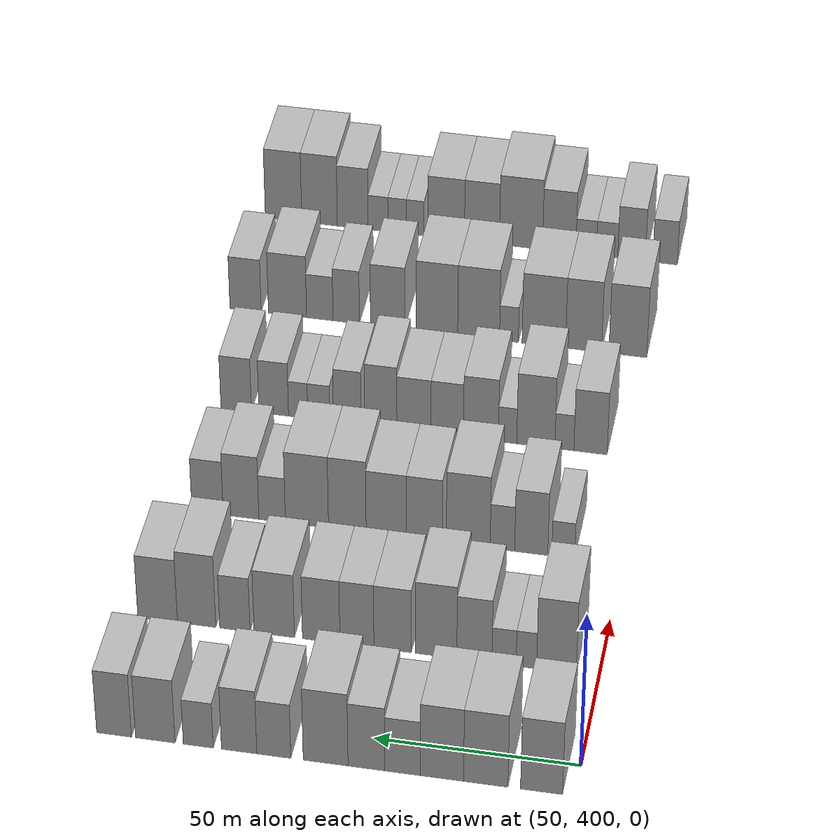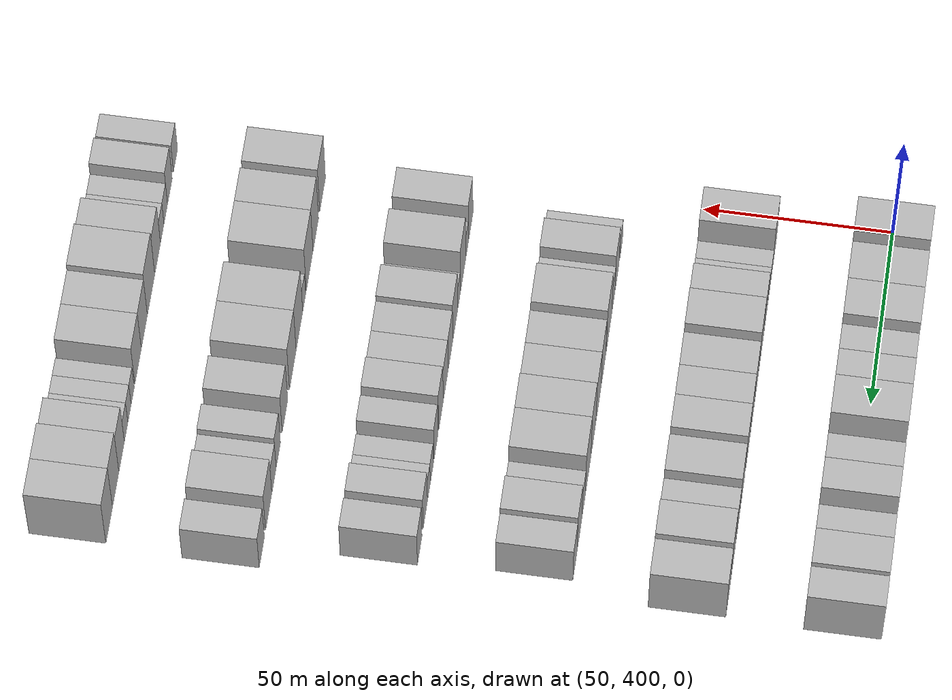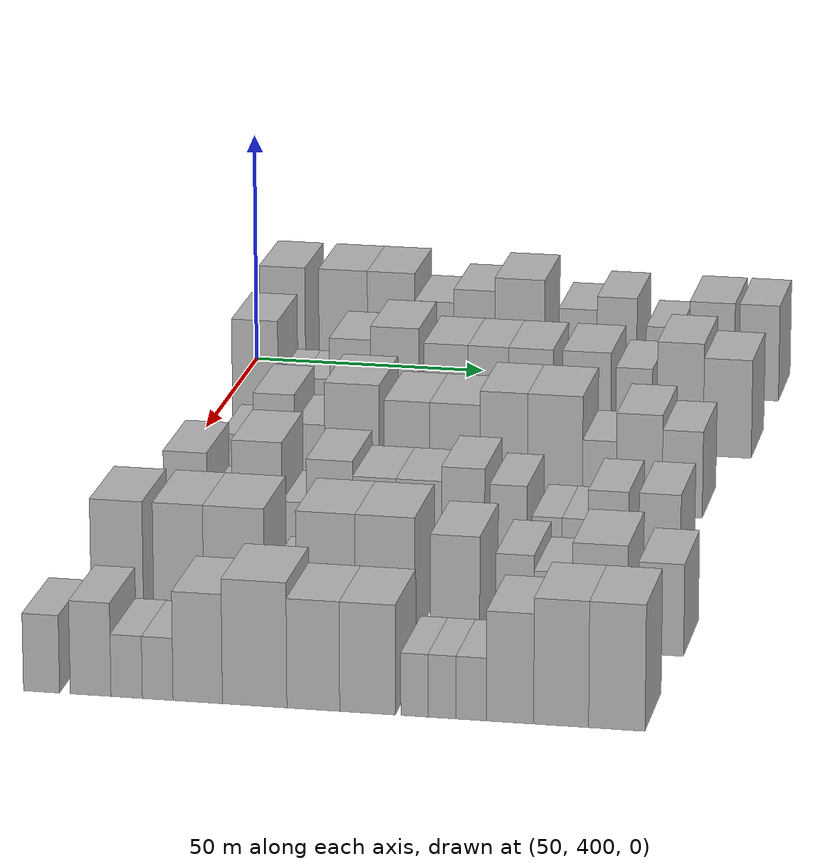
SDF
<sdf version="1.6">
 <world name="default">
  <model name="building_118">
   <static>1</static>
   <pose>50.0000 407.8402 0 0.000000 0.000000 0.000000</pose>
   <link name="link">
    <pose>0 0 12.00 0 0 0</pose>
    <collision name="collision"><geometry><box><size>20.0000 10.0114 24.0000</size></box></geometry></collision>
    <visual name="visual">
     <cast_shadows>0</cast_shadows>
     <geometry><box><size>20.0000 10.0114 24.0000</size></box></geometry>
     <material>
      <script>
       <uri>model://HANNAS_wall/materials/scripts</uri>
       <uri>model://HANNAS_wall/materials/textures</uri>
       <name>vrc/HANNAS_wall</name>
      </script>
     </material>
    </visual>
   </link>
  </model>
  <model name="building_119">
   <static>1</static>
   <pose>50.0000 421.1524 0 0.000000 0.000000 0.000000</pose>
   <link name="link">
    <pose>0 0 12.00 0 0 0</pose>
    <collision name="collision"><geometry><box><size>20.0000 10.6130 24.0000</size></box></geometry></collision>
    <visual name="visual">
     <cast_shadows>0</cast_shadows>
     <geometry><box><size>20.0000 10.6130 24.0000</size></box></geometry>
     <material>
      <script>
       <uri>model://HANNAS_wall/materials/scripts</uri>
       <uri>model://HANNAS_wall/materials/textures</uri>
       <name>vrc/HANNAS_wall</name>
      </script>
     </material>
    </visual>
   </link>
  </model>
  <model name="building_120">
   <static>1</static>
   <pose>50.0000 431.6428 0 0.000000 0.000000 0.000000</pose>
   <link name="link">
    <pose>0 0 12.00 0 0 0</pose>
    <collision name="collision"><geometry><box><size>20.0000 10.3678 24.0000</size></box></geometry></collision>
    <visual name="visual">
     <cast_shadows>0</cast_shadows>
     <geometry><box><size>20.0000 10.3678 24.0000</size></box></geometry>
     <material>
      <script>
       <uri>model://HANNAS_wall/materials/scripts</uri>
       <uri>model://HANNAS_wall/materials/textures</uri>
       <name>vrc/HANNAS_wall</name>
      </script>
     </material>
    </visual>
   </link>
  </model>
  <model name="building_121">
   <static>1</static>
   <pose>50.0000 441.0863 0 0.000000 0.000000 0.000000</pose>
   <link name="link">
    <pose>0 0 9.00 0 0 0</pose>
    <collision name="collision"><geometry><box><size>20.0000 8.5191 18.0000</size></box></geometry></collision>
    <visual name="visual">
     <cast_shadows>0</cast_shadows>
     <geometry><box><size>20.0000 8.5191 18.0000</size></box></geometry>
     <material>
      <script>
       <uri>model://HANNAS_wall/materials/scripts</uri>
       <uri>model://HANNAS_wall/materials/textures</uri>
       <name>vrc/HANNAS_wall</name>
      </script>
     </material>
    </visual>
   </link>
  </model>
  <model name="building_122">
   <static>1</static>
   <pose>50.0000 449.7845 0 0.000000 0.000000 0.000000</pose>
   <link name="link">
    <pose>0 0 10.50 0 0 0</pose>
    <collision name="collision"><geometry><box><size>20.0000 8.8772 21.0000</size></box></geometry></collision>
    <visual name="visual">
     <cast_shadows>0</cast_shadows>
     <geometry><box><size>20.0000 8.8772 21.0000</size></box></geometry>
     <material>
      <script>
       <uri>model://HANNAS_wall/materials/scripts</uri>
       <uri>model://HANNAS_wall/materials/textures</uri>
       <name>vrc/HANNAS_wall</name>
      </script>
     </material>
    </visual>
   </link>
  </model>
  <model name="building_123">
   <static>1</static>
   <pose>50.0000 459.6331 0 0.000000 0.000000 0.000000</pose>
   <link name="link">
    <pose>0 0 12.00 0 0 0</pose>
    <collision name="collision"><geometry><box><size>20.0000 10.8201 24.0000</size></box></geometry></collision>
    <visual name="visual">
     <cast_shadows>0</cast_shadows>
     <geometry><box><size>20.0000 10.8201 24.0000</size></box></geometry>
     <material>
      <script>
       <uri>model://HANNAS_wall/materials/scripts</uri>
       <uri>model://HANNAS_wall/materials/textures</uri>
       <name>vrc/HANNAS_wall</name>
      </script>
     </material>
    </visual>
   </link>
  </model>
  <model name="building_124">
   <static>1</static>
   <pose>50.0000 472.1668 0 0.000000 0.000000 0.000000</pose>
   <link name="link">
    <pose>0 0 9.00 0 0 0</pose>
    <collision name="collision"><geometry><box><size>20.0000 8.2473 18.0000</size></box></geometry></collision>
    <visual name="visual">
     <cast_shadows>0</cast_shadows>
     <geometry><box><size>20.0000 8.2473 18.0000</size></box></geometry>
     <material>
      <script>
       <uri>model://HANNAS_wall/materials/scripts</uri>
       <uri>model://HANNAS_wall/materials/textures</uri>
       <name>vrc/HANNAS_wall</name>
      </script>
     </material>
    </visual>
   </link>
  </model>
  <model name="building_125">
   <static>1</static>
   <pose>50.0000 480.5888 0 0.000000 0.000000 0.000000</pose>
   <link name="link">
    <pose>0 0 10.50 0 0 0</pose>
    <collision name="collision"><geometry><box><size>20.0000 8.5966 21.0000</size></box></geometry></collision>
    <visual name="visual">
     <cast_shadows>0</cast_shadows>
     <geometry><box><size>20.0000 8.5966 21.0000</size></box></geometry>
     <material>
      <script>
       <uri>model://HANNAS_wall/materials/scripts</uri>
       <uri>model://HANNAS_wall/materials/textures</uri>
       <name>vrc/HANNAS_wall</name>
      </script>
     </material>
    </visual>
   </link>
  </model>
  <model name="building_126">
   <static>1</static>
   <pose>50.0000 490.5388 0 0.000000 0.000000 0.000000</pose>
   <link name="link">
    <pose>0 0 7.50 0 0 0</pose>
    <collision name="collision"><geometry><box><size>20.0000 7.3034 15.0000</size></box></geometry></collision>
    <visual name="visual">
     <cast_shadows>0</cast_shadows>
     <geometry><box><size>20.0000 7.3034 15.0000</size></box></geometry>
     <material>
      <script>
       <uri>model://HANNAS_wall/materials/scripts</uri>
       <uri>model://HANNAS_wall/materials/textures</uri>
       <name>vrc/HANNAS_wall</name>
      </script>
     </material>
    </visual>
   </link>
  </model>
  <model name="building_127">
   <static>1</static>
   <pose>50.0000 501.0231 0 0.000000 0.000000 0.000000</pose>
   <link name="link">
    <pose>0 0 10.50 0 0 0</pose>
    <collision name="collision"><geometry><box><size>20.0000 9.6653 21.0000</size></box></geometry></collision>
    <visual name="visual">
     <cast_shadows>0</cast_shadows>
     <geometry><box><size>20.0000 9.6653 21.0000</size></box></geometry>
     <material>
      <script>
       <uri>model://HANNAS_wall/materials/scripts</uri>
       <uri>model://HANNAS_wall/materials/textures</uri>
       <name>vrc/HANNAS_wall</name>
      </script>
     </material>
    </visual>
   </link>
  </model>
  <model name="building_128">
   <static>1</static>
   <pose>50.0000 511.1208 0 0.000000 0.000000 0.000000</pose>
   <link name="link">
    <pose>0 0 10.50 0 0 0</pose>
    <collision name="collision"><geometry><box><size>20.0000 8.5302 21.0000</size></box></geometry></collision>
    <visual name="visual">
     <cast_shadows>0</cast_shadows>
     <geometry><box><size>20.0000 8.5302 21.0000</size></box></geometry>
     <material>
      <script>
       <uri>model://HANNAS_wall/materials/scripts</uri>
       <uri>model://HANNAS_wall/materials/textures</uri>
       <name>vrc/HANNAS_wall</name>
      </script>
     </material>
    </visual>
   </link>
  </model>
  <model name="building_254">
   <static>1</static>
   <pose>90.0000 410.4669 0 0.000000 0.000000 0.000000</pose>
   <link name="link">
    <pose>0 0 12.00 0 0 0</pose>
    <collision name="collision"><geometry><box><size>20.0000 9.7585 24.0000</size></box></geometry></collision>
    <visual name="visual">
     <cast_shadows>0</cast_shadows>
     <geometry><box><size>20.0000 9.7585 24.0000</size></box></geometry>
     <material>
      <script>
       <uri>model://HANNAS_wall/materials/scripts</uri>
       <uri>model://HANNAS_wall/materials/textures</uri>
       <name>vrc/HANNAS_wall</name>
      </script>
     </material>
    </visual>
   </link>
  </model>
  <model name="building_255">
   <static>1</static>
   <pose>90.0000 417.8589 0 0.000000 0.000000 0.000000</pose>
   <link name="link">
    <pose>0 0 6.00 0 0 0</pose>
    <collision name="collision"><geometry><box><size>20.0000 5.0255 12.0000</size></box></geometry></collision>
    <visual name="visual">
     <cast_shadows>0</cast_shadows>
     <geometry><box><size>20.0000 5.0255 12.0000</size></box></geometry>
     <material>
      <script>
       <uri>model://HANNAS_wall/materials/scripts</uri>
       <uri>model://HANNAS_wall/materials/textures</uri>
       <name>vrc/HANNAS_wall</name>
      </script>
     </material>
    </visual>
   </link>
  </model>
  <model name="building_256">
   <static>1</static>
   <pose>90.0000 423.3537 0 0.000000 0.000000 0.000000</pose>
   <link name="link">
    <pose>0 0 6.00 0 0 0</pose>
    <collision name="collision"><geometry><box><size>20.0000 5.9640 12.0000</size></box></geometry></collision>
    <visual name="visual">
     <cast_shadows>0</cast_shadows>
     <geometry><box><size>20.0000 5.9640 12.0000</size></box></geometry>
     <material>
      <script>
       <uri>model://HANNAS_wall/materials/scripts</uri>
       <uri>model://HANNAS_wall/materials/textures</uri>
       <name>vrc/HANNAS_wall</name>
      </script>
     </material>
    </visual>
   </link>
  </model>
  <model name="building_257">
   <static>1</static>
   <pose>90.0000 430.6773 0 0.000000 0.000000 0.000000</pose>
   <link name="link">
    <pose>0 0 10.50 0 0 0</pose>
    <collision name="collision"><geometry><box><size>20.0000 8.6832 21.0000</size></box></geometry></collision>
    <visual name="visual">
     <cast_shadows>0</cast_shadows>
     <geometry><box><size>20.0000 8.6832 21.0000</size></box></geometry>
     <material>
      <script>
       <uri>model://HANNAS_wall/materials/scripts</uri>
       <uri>model://HANNAS_wall/materials/textures</uri>
       <name>vrc/HANNAS_wall</name>
      </script>
     </material>
    </visual>
   </link>
  </model>
  <model name="building_258">
   <static>1</static>
   <pose>90.0000 440.1343 0 0.000000 0.000000 0.000000</pose>
   <link name="link">
    <pose>0 0 12.00 0 0 0</pose>
    <collision name="collision"><geometry><box><size>20.0000 10.2310 24.0000</size></box></geometry></collision>
    <visual name="visual">
     <cast_shadows>0</cast_shadows>
     <geometry><box><size>20.0000 10.2310 24.0000</size></box></geometry>
     <material>
      <script>
       <uri>model://HANNAS_wall/materials/scripts</uri>
       <uri>model://HANNAS_wall/materials/textures</uri>
       <name>vrc/HANNAS_wall</name>
      </script>
     </material>
    </visual>
   </link>
  </model>
  <model name="building_259">
   <static>1</static>
   <pose>90.0000 450.9109 0 0.000000 0.000000 0.000000</pose>
   <link name="link">
    <pose>0 0 10.50 0 0 0</pose>
    <collision name="collision"><geometry><box><size>20.0000 9.3222 21.0000</size></box></geometry></collision>
    <visual name="visual">
     <cast_shadows>0</cast_shadows>
     <geometry><box><size>20.0000 9.3222 21.0000</size></box></geometry>
     <material>
      <script>
       <uri>model://HANNAS_wall/materials/scripts</uri>
       <uri>model://HANNAS_wall/materials/textures</uri>
       <name>vrc/HANNAS_wall</name>
      </script>
     </material>
    </visual>
   </link>
  </model>
  <model name="building_260">
   <static>1</static>
   <pose>90.0000 459.8056 0 0.000000 0.000000 0.000000</pose>
   <link name="link">
    <pose>0 0 10.50 0 0 0</pose>
    <collision name="collision"><geometry><box><size>20.0000 8.4673 21.0000</size></box></geometry></collision>
    <visual name="visual">
     <cast_shadows>0</cast_shadows>
     <geometry><box><size>20.0000 8.4673 21.0000</size></box></geometry>
     <material>
      <script>
       <uri>model://HANNAS_wall/materials/scripts</uri>
       <uri>model://HANNAS_wall/materials/textures</uri>
       <name>vrc/HANNAS_wall</name>
      </script>
     </material>
    </visual>
   </link>
  </model>
  <model name="building_261">
   <static>1</static>
   <pose>90.0000 468.7089 0 0.000000 0.000000 0.000000</pose>
   <link name="link">
    <pose>0 0 10.50 0 0 0</pose>
    <collision name="collision"><geometry><box><size>20.0000 9.3393 21.0000</size></box></geometry></collision>
    <visual name="visual">
     <cast_shadows>0</cast_shadows>
     <geometry><box><size>20.0000 9.3393 21.0000</size></box></geometry>
     <material>
      <script>
       <uri>model://HANNAS_wall/materials/scripts</uri>
       <uri>model://HANNAS_wall/materials/textures</uri>
       <name>vrc/HANNAS_wall</name>
      </script>
     </material>
    </visual>
   </link>
  </model>
  <model name="building_262">
   <static>1</static>
   <pose>90.0000 480.4415 0 0.000000 0.000000 0.000000</pose>
   <link name="link">
    <pose>0 0 10.50 0 0 0</pose>
    <collision name="collision"><geometry><box><size>20.0000 10.1257 21.0000</size></box></geometry></collision>
    <visual name="visual">
     <cast_shadows>0</cast_shadows>
     <geometry><box><size>20.0000 10.1257 21.0000</size></box></geometry>
     <material>
      <script>
       <uri>model://HANNAS_wall/materials/scripts</uri>
       <uri>model://HANNAS_wall/materials/textures</uri>
       <name>vrc/HANNAS_wall</name>
      </script>
     </material>
    </visual>
   </link>
  </model>
  <model name="building_263">
   <static>1</static>
   <pose>90.0000 490.3108 0 0.000000 0.000000 0.000000</pose>
   <link name="link">
    <pose>0 0 9.00 0 0 0</pose>
    <collision name="collision"><geometry><box><size>20.0000 7.6128 18.0000</size></box></geometry></collision>
    <visual name="visual">
     <cast_shadows>0</cast_shadows>
     <geometry><box><size>20.0000 7.6128 18.0000</size></box></geometry>
     <material>
      <script>
       <uri>model://HANNAS_wall/materials/scripts</uri>
       <uri>model://HANNAS_wall/materials/textures</uri>
       <name>vrc/HANNAS_wall</name>
      </script>
     </material>
    </visual>
   </link>
  </model>
  <model name="building_264">
   <static>1</static>
   <pose>90.0000 499.9467 0 0.000000 0.000000 0.000000</pose>
   <link name="link">
    <pose>0 0 12.00 0 0 0</pose>
    <collision name="collision"><geometry><box><size>20.0000 9.6590 24.0000</size></box></geometry></collision>
    <visual name="visual">
     <cast_shadows>0</cast_shadows>
     <geometry><box><size>20.0000 9.6590 24.0000</size></box></geometry>
     <material>
      <script>
       <uri>model://HANNAS_wall/materials/scripts</uri>
       <uri>model://HANNAS_wall/materials/textures</uri>
       <name>vrc/HANNAS_wall</name>
      </script>
     </material>
    </visual>
   </link>
  </model>
  <model name="building_265">
   <static>1</static>
   <pose>90.0000 509.7787 0 0.000000 0.000000 0.000000</pose>
   <link name="link">
    <pose>0 0 10.50 0 0 0</pose>
    <collision name="collision"><geometry><box><size>20.0000 10.0051 21.0000</size></box></geometry></collision>
    <visual name="visual">
     <cast_shadows>0</cast_shadows>
     <geometry><box><size>20.0000 10.0051 21.0000</size></box></geometry>
     <material>
      <script>
       <uri>model://HANNAS_wall/materials/scripts</uri>
       <uri>model://HANNAS_wall/materials/textures</uri>
       <name>vrc/HANNAS_wall</name>
      </script>
     </material>
    </visual>
   </link>
  </model>
  <model name="building_383">
   <static>1</static>
   <pose>130.0000 414.8869 0 0.000000 0.000000 0.000000</pose>
   <link name="link">
    <pose>0 0 6.00 0 0 0</pose>
    <collision name="collision"><geometry><box><size>20.0000 5.8373 12.0000</size></box></geometry></collision>
    <visual name="visual">
     <cast_shadows>0</cast_shadows>
     <geometry><box><size>20.0000 5.8373 12.0000</size></box></geometry>
     <material>
      <script>
       <uri>model://HANNAS_wall/materials/scripts</uri>
       <uri>model://HANNAS_wall/materials/textures</uri>
       <name>vrc/HANNAS_wall</name>
      </script>
     </material>
    </visual>
   </link>
  </model>
  <model name="building_384">
   <static>1</static>
   <pose>130.0000 423.0171 0 0.000000 0.000000 0.000000</pose>
   <link name="link">
    <pose>0 0 10.50 0 0 0</pose>
    <collision name="collision"><geometry><box><size>20.0000 8.4231 21.0000</size></box></geometry></collision>
    <visual name="visual">
     <cast_shadows>0</cast_shadows>
     <geometry><box><size>20.0000 8.4231 21.0000</size></box></geometry>
     <material>
      <script>
       <uri>model://HANNAS_wall/materials/scripts</uri>
       <uri>model://HANNAS_wall/materials/textures</uri>
       <name>vrc/HANNAS_wall</name>
      </script>
     </material>
    </visual>
   </link>
  </model>
  <model name="building_385">
   <static>1</static>
   <pose>130.0000 430.3355 0 0.000000 0.000000 0.000000</pose>
   <link name="link">
    <pose>0 0 7.50 0 0 0</pose>
    <collision name="collision"><geometry><box><size>20.0000 6.2138 15.0000</size></box></geometry></collision>
    <visual name="visual">
     <cast_shadows>0</cast_shadows>
     <geometry><box><size>20.0000 6.2138 15.0000</size></box></geometry>
     <material>
      <script>
       <uri>model://HANNAS_wall/materials/scripts</uri>
       <uri>model://HANNAS_wall/materials/textures</uri>
       <name>vrc/HANNAS_wall</name>
      </script>
     </material>
    </visual>
   </link>
  </model>
  <model name="building_386">
   <static>1</static>
   <pose>130.0000 439.0436 0 0.000000 0.000000 0.000000</pose>
   <link name="link">
    <pose>0 0 12.00 0 0 0</pose>
    <collision name="collision"><geometry><box><size>20.0000 11.2025 24.0000</size></box></geometry></collision>
    <visual name="visual">
     <cast_shadows>0</cast_shadows>
     <geometry><box><size>20.0000 11.2025 24.0000</size></box></geometry>
     <material>
      <script>
       <uri>model://HANNAS_wall/materials/scripts</uri>
       <uri>model://HANNAS_wall/materials/textures</uri>
       <name>vrc/HANNAS_wall</name>
      </script>
     </material>
    </visual>
   </link>
  </model>
  <model name="building_387">
   <static>1</static>
   <pose>130.0000 450.2830 0 0.000000 0.000000 0.000000</pose>
   <link name="link">
    <pose>0 0 10.50 0 0 0</pose>
    <collision name="collision"><geometry><box><size>20.0000 9.2763 21.0000</size></box></geometry></collision>
    <visual name="visual">
     <cast_shadows>0</cast_shadows>
     <geometry><box><size>20.0000 9.2763 21.0000</size></box></geometry>
     <material>
      <script>
       <uri>model://HANNAS_wall/materials/scripts</uri>
       <uri>model://HANNAS_wall/materials/textures</uri>
       <name>vrc/HANNAS_wall</name>
      </script>
     </material>
    </visual>
   </link>
  </model>
  <model name="building_388">
   <static>1</static>
   <pose>130.0000 460.0347 0 0.000000 0.000000 0.000000</pose>
   <link name="link">
    <pose>0 0 10.50 0 0 0</pose>
    <collision name="collision"><geometry><box><size>20.0000 10.2270 21.0000</size></box></geometry></collision>
    <visual name="visual">
     <cast_shadows>0</cast_shadows>
     <geometry><box><size>20.0000 10.2270 21.0000</size></box></geometry>
     <material>
      <script>
       <uri>model://HANNAS_wall/materials/scripts</uri>
       <uri>model://HANNAS_wall/materials/textures</uri>
       <name>vrc/HANNAS_wall</name>
      </script>
     </material>
    </visual>
   </link>
  </model>
  <model name="building_389">
   <static>1</static>
   <pose>130.0000 469.9922 0 0.000000 0.000000 0.000000</pose>
   <link name="link">
    <pose>0 0 12.00 0 0 0</pose>
    <collision name="collision"><geometry><box><size>20.0000 9.6880 24.0000</size></box></geometry></collision>
    <visual name="visual">
     <cast_shadows>0</cast_shadows>
     <geometry><box><size>20.0000 9.6880 24.0000</size></box></geometry>
     <material>
      <script>
       <uri>model://HANNAS_wall/materials/scripts</uri>
       <uri>model://HANNAS_wall/materials/textures</uri>
       <name>vrc/HANNAS_wall</name>
      </script>
     </material>
    </visual>
   </link>
  </model>
  <model name="building_390">
   <static>1</static>
   <pose>130.0000 480.3987 0 0.000000 0.000000 0.000000</pose>
   <link name="link">
    <pose>0 0 12.00 0 0 0</pose>
    <collision name="collision"><geometry><box><size>20.0000 11.1250 24.0000</size></box></geometry></collision>
    <visual name="visual">
     <cast_shadows>0</cast_shadows>
     <geometry><box><size>20.0000 11.1250 24.0000</size></box></geometry>
     <material>
      <script>
       <uri>model://HANNAS_wall/materials/scripts</uri>
       <uri>model://HANNAS_wall/materials/textures</uri>
       <name>vrc/HANNAS_wall</name>
      </script>
     </material>
    </visual>
   </link>
  </model>
  <model name="building_391">
   <static>1</static>
   <pose>130.0000 489.3810 0 0.000000 0.000000 0.000000</pose>
   <link name="link">
    <pose>0 0 7.50 0 0 0</pose>
    <collision name="collision"><geometry><box><size>20.0000 6.8396 15.0000</size></box></geometry></collision>
    <visual name="visual">
     <cast_shadows>0</cast_shadows>
     <geometry><box><size>20.0000 6.8396 15.0000</size></box></geometry>
     <material>
      <script>
       <uri>model://HANNAS_wall/materials/scripts</uri>
       <uri>model://HANNAS_wall/materials/textures</uri>
       <name>vrc/HANNAS_wall</name>
      </script>
     </material>
    </visual>
   </link>
  </model>
  <model name="building_392">
   <static>1</static>
   <pose>130.0000 497.4226 0 0.000000 0.000000 0.000000</pose>
   <link name="link">
    <pose>0 0 10.50 0 0 0</pose>
    <collision name="collision"><geometry><box><size>20.0000 9.2436 21.0000</size></box></geometry></collision>
    <visual name="visual">
     <cast_shadows>0</cast_shadows>
     <geometry><box><size>20.0000 9.2436 21.0000</size></box></geometry>
     <material>
      <script>
       <uri>model://HANNAS_wall/materials/scripts</uri>
       <uri>model://HANNAS_wall/materials/textures</uri>
       <name>vrc/HANNAS_wall</name>
      </script>
     </material>
    </visual>
   </link>
  </model>
  <model name="building_393">
   <static>1</static>
   <pose>130.0000 506.1037 0 0.000000 0.000000 0.000000</pose>
   <link name="link">
    <pose>0 0 9.00 0 0 0</pose>
    <collision name="collision"><geometry><box><size>20.0000 8.1184 18.0000</size></box></geometry></collision>
    <visual name="visual">
     <cast_shadows>0</cast_shadows>
     <geometry><box><size>20.0000 8.1184 18.0000</size></box></geometry>
     <material>
      <script>
       <uri>model://HANNAS_wall/materials/scripts</uri>
       <uri>model://HANNAS_wall/materials/textures</uri>
       <name>vrc/HANNAS_wall</name>
      </script>
     </material>
    </visual>
   </link>
  </model>
  <model name="building_506">
   <static>1</static>
   <pose>170.0000 413.8685 0 0.000000 0.000000 0.000000</pose>
   <link name="link">
    <pose>0 0 10.50 0 0 0</pose>
    <collision name="collision"><geometry><box><size>20.0000 8.6747 21.0000</size></box></geometry></collision>
    <visual name="visual">
     <cast_shadows>0</cast_shadows>
     <geometry><box><size>20.0000 8.6747 21.0000</size></box></geometry>
     <material>
      <script>
       <uri>model://HANNAS_wall/materials/scripts</uri>
       <uri>model://HANNAS_wall/materials/textures</uri>
       <name>vrc/HANNAS_wall</name>
      </script>
     </material>
    </visual>
   </link>
  </model>
  <model name="building_507">
   <static>1</static>
   <pose>170.0000 420.6895 0 0.000000 0.000000 0.000000</pose>
   <link name="link">
    <pose>0 0 6.00 0 0 0</pose>
    <collision name="collision"><geometry><box><size>20.0000 4.9673 12.0000</size></box></geometry></collision>
    <visual name="visual">
     <cast_shadows>0</cast_shadows>
     <geometry><box><size>20.0000 4.9673 12.0000</size></box></geometry>
     <material>
      <script>
       <uri>model://HANNAS_wall/materials/scripts</uri>
       <uri>model://HANNAS_wall/materials/textures</uri>
       <name>vrc/HANNAS_wall</name>
      </script>
     </material>
    </visual>
   </link>
  </model>
  <model name="building_508">
   <static>1</static>
   <pose>170.0000 428.1649 0 0.000000 0.000000 0.000000</pose>
   <link name="link">
    <pose>0 0 12.00 0 0 0</pose>
    <collision name="collision"><geometry><box><size>20.0000 9.9834 24.0000</size></box></geometry></collision>
    <visual name="visual">
     <cast_shadows>0</cast_shadows>
     <geometry><box><size>20.0000 9.9834 24.0000</size></box></geometry>
     <material>
      <script>
       <uri>model://HANNAS_wall/materials/scripts</uri>
       <uri>model://HANNAS_wall/materials/textures</uri>
       <name>vrc/HANNAS_wall</name>
      </script>
     </material>
    </visual>
   </link>
  </model>
  <model name="building_509">
   <static>1</static>
   <pose>170.0000 435.5674 0 0.000000 0.000000 0.000000</pose>
   <link name="link">
    <pose>0 0 6.00 0 0 0</pose>
    <collision name="collision"><geometry><box><size>20.0000 4.8217 12.0000</size></box></geometry></collision>
    <visual name="visual">
     <cast_shadows>0</cast_shadows>
     <geometry><box><size>20.0000 4.8217 12.0000</size></box></geometry>
     <material>
      <script>
       <uri>model://HANNAS_wall/materials/scripts</uri>
       <uri>model://HANNAS_wall/materials/textures</uri>
       <name>vrc/HANNAS_wall</name>
      </script>
     </material>
    </visual>
   </link>
  </model>
  <model name="building_510">
   <static>1</static>
   <pose>170.0000 442.5576 0 0.000000 0.000000 0.000000</pose>
   <link name="link">
    <pose>0 0 10.50 0 0 0</pose>
    <collision name="collision"><geometry><box><size>20.0000 9.1586 21.0000</size></box></geometry></collision>
    <visual name="visual">
     <cast_shadows>0</cast_shadows>
     <geometry><box><size>20.0000 9.1586 21.0000</size></box></geometry>
     <material>
      <script>
       <uri>model://HANNAS_wall/materials/scripts</uri>
       <uri>model://HANNAS_wall/materials/textures</uri>
       <name>vrc/HANNAS_wall</name>
      </script>
     </material>
    </visual>
   </link>
  </model>
  <model name="building_511">
   <static>1</static>
   <pose>170.0000 451.4127 0 0.000000 0.000000 0.000000</pose>
   <link name="link">
    <pose>0 0 9.00 0 0 0</pose>
    <collision name="collision"><geometry><box><size>20.0000 8.5516 18.0000</size></box></geometry></collision>
    <visual name="visual">
     <cast_shadows>0</cast_shadows>
     <geometry><box><size>20.0000 8.5516 18.0000</size></box></geometry>
     <material>
      <script>
       <uri>model://HANNAS_wall/materials/scripts</uri>
       <uri>model://HANNAS_wall/materials/textures</uri>
       <name>vrc/HANNAS_wall</name>
      </script>
     </material>
    </visual>
   </link>
  </model>
  <model name="building_512">
   <static>1</static>
   <pose>170.0000 460.1822 0 0.000000 0.000000 0.000000</pose>
   <link name="link">
    <pose>0 0 9.00 0 0 0</pose>
    <collision name="collision"><geometry><box><size>20.0000 8.9875 18.0000</size></box></geometry></collision>
    <visual name="visual">
     <cast_shadows>0</cast_shadows>
     <geometry><box><size>20.0000 8.9875 18.0000</size></box></geometry>
     <material>
      <script>
       <uri>model://HANNAS_wall/materials/scripts</uri>
       <uri>model://HANNAS_wall/materials/textures</uri>
       <name>vrc/HANNAS_wall</name>
      </script>
     </material>
    </visual>
   </link>
  </model>
  <model name="building_513">
   <static>1</static>
   <pose>170.0000 468.9199 0 0.000000 0.000000 0.000000</pose>
   <link name="link">
    <pose>0 0 10.50 0 0 0</pose>
    <collision name="collision"><geometry><box><size>20.0000 8.4879 21.0000</size></box></geometry></collision>
    <visual name="visual">
     <cast_shadows>0</cast_shadows>
     <geometry><box><size>20.0000 8.4879 21.0000</size></box></geometry>
     <material>
      <script>
       <uri>model://HANNAS_wall/materials/scripts</uri>
       <uri>model://HANNAS_wall/materials/textures</uri>
       <name>vrc/HANNAS_wall</name>
      </script>
     </material>
    </visual>
   </link>
  </model>
  <model name="building_514">
   <static>1</static>
   <pose>170.0000 477.8163 0 0.000000 0.000000 0.000000</pose>
   <link name="link">
    <pose>0 0 9.00 0 0 0</pose>
    <collision name="collision"><geometry><box><size>20.0000 7.3048 18.0000</size></box></geometry></collision>
    <visual name="visual">
     <cast_shadows>0</cast_shadows>
     <geometry><box><size>20.0000 7.3048 18.0000</size></box></geometry>
     <material>
      <script>
       <uri>model://HANNAS_wall/materials/scripts</uri>
       <uri>model://HANNAS_wall/materials/textures</uri>
       <name>vrc/HANNAS_wall</name>
      </script>
     </material>
    </visual>
   </link>
  </model>
  <model name="building_515">
   <static>1</static>
   <pose>170.0000 485.3894 0 0.000000 0.000000 0.000000</pose>
   <link name="link">
    <pose>0 0 6.00 0 0 0</pose>
    <collision name="collision"><geometry><box><size>20.0000 5.8415 12.0000</size></box></geometry></collision>
    <visual name="visual">
     <cast_shadows>0</cast_shadows>
     <geometry><box><size>20.0000 5.8415 12.0000</size></box></geometry>
     <material>
      <script>
       <uri>model://HANNAS_wall/materials/scripts</uri>
       <uri>model://HANNAS_wall/materials/textures</uri>
       <name>vrc/HANNAS_wall</name>
      </script>
     </material>
    </visual>
   </link>
  </model>
  <model name="building_516">
   <static>1</static>
   <pose>170.0000 490.8683 0 0.000000 0.000000 0.000000</pose>
   <link name="link">
    <pose>0 0 6.00 0 0 0</pose>
    <collision name="collision"><geometry><box><size>20.0000 5.1162 12.0000</size></box></geometry></collision>
    <visual name="visual">
     <cast_shadows>0</cast_shadows>
     <geometry><box><size>20.0000 5.1162 12.0000</size></box></geometry>
     <material>
      <script>
       <uri>model://HANNAS_wall/materials/scripts</uri>
       <uri>model://HANNAS_wall/materials/textures</uri>
       <name>vrc/HANNAS_wall</name>
      </script>
     </material>
    </visual>
   </link>
  </model>
  <model name="building_517">
   <static>1</static>
   <pose>170.0000 497.3653 0 0.000000 0.000000 0.000000</pose>
   <link name="link">
    <pose>0 0 9.00 0 0 0</pose>
    <collision name="collision"><geometry><box><size>20.0000 7.8777 18.0000</size></box></geometry></collision>
    <visual name="visual">
     <cast_shadows>0</cast_shadows>
     <geometry><box><size>20.0000 7.8777 18.0000</size></box></geometry>
     <material>
      <script>
       <uri>model://HANNAS_wall/materials/scripts</uri>
       <uri>model://HANNAS_wall/materials/textures</uri>
       <name>vrc/HANNAS_wall</name>
      </script>
     </material>
    </visual>
   </link>
  </model>
  <model name="building_518">
   <static>1</static>
   <pose>170.0000 507.3700 0 0.000000 0.000000 0.000000</pose>
   <link name="link">
    <pose>0 0 9.00 0 0 0</pose>
    <collision name="collision"><geometry><box><size>20.0000 8.1317 18.0000</size></box></geometry></collision>
    <visual name="visual">
     <cast_shadows>0</cast_shadows>
     <geometry><box><size>20.0000 8.1317 18.0000</size></box></geometry>
     <material>
      <script>
       <uri>model://HANNAS_wall/materials/scripts</uri>
       <uri>model://HANNAS_wall/materials/textures</uri>
       <name>vrc/HANNAS_wall</name>
      </script>
     </material>
    </visual>
   </link>
  </model>
  <model name="building_632">
   <static>1</static>
   <pose>210.0000 409.7538 0 0.000000 0.000000 0.000000</pose>
   <link name="link">
    <pose>0 0 12.00 0 0 0</pose>
    <collision name="collision"><geometry><box><size>20.0000 10.1325 24.0000</size></box></geometry></collision>
    <visual name="visual">
     <cast_shadows>0</cast_shadows>
     <geometry><box><size>20.0000 10.1325 24.0000</size></box></geometry>
     <material>
      <script>
       <uri>model://HANNAS_wall/materials/scripts</uri>
       <uri>model://HANNAS_wall/materials/textures</uri>
       <name>vrc/HANNAS_wall</name>
      </script>
     </material>
    </visual>
   </link>
  </model>
  <model name="building_633">
   <static>1</static>
   <pose>210.0000 421.6464 0 0.000000 0.000000 0.000000</pose>
   <link name="link">
    <pose>0 0 12.00 0 0 0</pose>
    <collision name="collision"><geometry><box><size>20.0000 9.6528 24.0000</size></box></geometry></collision>
    <visual name="visual">
     <cast_shadows>0</cast_shadows>
     <geometry><box><size>20.0000 9.6528 24.0000</size></box></geometry>
     <material>
      <script>
       <uri>model://HANNAS_wall/materials/scripts</uri>
       <uri>model://HANNAS_wall/materials/textures</uri>
       <name>vrc/HANNAS_wall</name>
      </script>
     </material>
    </visual>
   </link>
  </model>
  <model name="building_634">
   <static>1</static>
   <pose>210.0000 432.3243 0 0.000000 0.000000 0.000000</pose>
   <link name="link">
    <pose>0 0 12.00 0 0 0</pose>
    <collision name="collision"><geometry><box><size>20.0000 11.7029 24.0000</size></box></geometry></collision>
    <visual name="visual">
     <cast_shadows>0</cast_shadows>
     <geometry><box><size>20.0000 11.7029 24.0000</size></box></geometry>
     <material>
      <script>
       <uri>model://HANNAS_wall/materials/scripts</uri>
       <uri>model://HANNAS_wall/materials/textures</uri>
       <name>vrc/HANNAS_wall</name>
      </script>
     </material>
    </visual>
   </link>
  </model>
  <model name="building_635">
   <static>1</static>
   <pose>210.0000 441.7238 0 0.000000 0.000000 0.000000</pose>
   <link name="link">
    <pose>0 0 6.00 0 0 0</pose>
    <collision name="collision"><geometry><box><size>20.0000 5.0961 12.0000</size></box></geometry></collision>
    <visual name="visual">
     <cast_shadows>0</cast_shadows>
     <geometry><box><size>20.0000 5.0961 12.0000</size></box></geometry>
     <material>
      <script>
       <uri>model://HANNAS_wall/materials/scripts</uri>
       <uri>model://HANNAS_wall/materials/textures</uri>
       <name>vrc/HANNAS_wall</name>
      </script>
     </material>
    </visual>
   </link>
  </model>
  <model name="building_636">
   <static>1</static>
   <pose>210.0000 449.9310 0 0.000000 0.000000 0.000000</pose>
   <link name="link">
    <pose>0 0 12.00 0 0 0</pose>
    <collision name="collision"><geometry><box><size>20.0000 11.3183 24.0000</size></box></geometry></collision>
    <visual name="visual">
     <cast_shadows>0</cast_shadows>
     <geometry><box><size>20.0000 11.3183 24.0000</size></box></geometry>
     <material>
      <script>
       <uri>model://HANNAS_wall/materials/scripts</uri>
       <uri>model://HANNAS_wall/materials/textures</uri>
       <name>vrc/HANNAS_wall</name>
      </script>
     </material>
    </visual>
   </link>
  </model>
  <model name="building_637">
   <static>1</static>
   <pose>210.0000 461.2692 0 0.000000 0.000000 0.000000</pose>
   <link name="link">
    <pose>0 0 12.00 0 0 0</pose>
    <collision name="collision"><geometry><box><size>20.0000 11.3582 24.0000</size></box></geometry></collision>
    <visual name="visual">
     <cast_shadows>0</cast_shadows>
     <geometry><box><size>20.0000 11.3582 24.0000</size></box></geometry>
     <material>
      <script>
       <uri>model://HANNAS_wall/materials/scripts</uri>
       <uri>model://HANNAS_wall/materials/textures</uri>
       <name>vrc/HANNAS_wall</name>
      </script>
     </material>
    </visual>
   </link>
  </model>
  <model name="building_638">
   <static>1</static>
   <pose>210.0000 474.6186 0 0.000000 0.000000 0.000000</pose>
   <link name="link">
    <pose>0 0 10.50 0 0 0</pose>
    <collision name="collision"><geometry><box><size>20.0000 9.3404 21.0000</size></box></geometry></collision>
    <visual name="visual">
     <cast_shadows>0</cast_shadows>
     <geometry><box><size>20.0000 9.3404 21.0000</size></box></geometry>
     <material>
      <script>
       <uri>model://HANNAS_wall/materials/scripts</uri>
       <uri>model://HANNAS_wall/materials/textures</uri>
       <name>vrc/HANNAS_wall</name>
      </script>
     </material>
    </visual>
   </link>
  </model>
  <model name="building_639">
   <static>1</static>
   <pose>210.0000 485.8995 0 0.000000 0.000000 0.000000</pose>
   <link name="link">
    <pose>0 0 9.00 0 0 0</pose>
    <collision name="collision"><geometry><box><size>20.0000 7.2214 18.0000</size></box></geometry></collision>
    <visual name="visual">
     <cast_shadows>0</cast_shadows>
     <geometry><box><size>20.0000 7.2214 18.0000</size></box></geometry>
     <material>
      <script>
       <uri>model://HANNAS_wall/materials/scripts</uri>
       <uri>model://HANNAS_wall/materials/textures</uri>
       <name>vrc/HANNAS_wall</name>
      </script>
     </material>
    </visual>
   </link>
  </model>
  <model name="building_640">
   <static>1</static>
   <pose>210.0000 493.1346 0 0.000000 0.000000 0.000000</pose>
   <link name="link">
    <pose>0 0 7.50 0 0 0</pose>
    <collision name="collision"><geometry><box><size>20.0000 7.2489 15.0000</size></box></geometry></collision>
    <visual name="visual">
     <cast_shadows>0</cast_shadows>
     <geometry><box><size>20.0000 7.2489 15.0000</size></box></geometry>
     <material>
      <script>
       <uri>model://HANNAS_wall/materials/scripts</uri>
       <uri>model://HANNAS_wall/materials/textures</uri>
       <name>vrc/HANNAS_wall</name>
      </script>
     </material>
    </visual>
   </link>
  </model>
  <model name="building_641">
   <static>1</static>
   <pose>210.0000 501.9810 0 0.000000 0.000000 0.000000</pose>
   <link name="link">
    <pose>0 0 10.50 0 0 0</pose>
    <collision name="collision"><geometry><box><size>20.0000 10.4440 21.0000</size></box></geometry></collision>
    <visual name="visual">
     <cast_shadows>0</cast_shadows>
     <geometry><box><size>20.0000 10.4440 21.0000</size></box></geometry>
     <material>
      <script>
       <uri>model://HANNAS_wall/materials/scripts</uri>
       <uri>model://HANNAS_wall/materials/textures</uri>
       <name>vrc/HANNAS_wall</name>
      </script>
     </material>
    </visual>
   </link>
  </model>
  <model name="building_642">
   <static>1</static>
   <pose>210.0000 513.4861 0 0.000000 0.000000 0.000000</pose>
   <link name="link">
    <pose>0 0 9.00 0 0 0</pose>
    <collision name="collision"><geometry><box><size>20.0000 8.5661 18.0000</size></box></geometry></collision>
    <visual name="visual">
     <cast_shadows>0</cast_shadows>
     <geometry><box><size>20.0000 8.5661 18.0000</size></box></geometry>
     <material>
      <script>
       <uri>model://HANNAS_wall/materials/scripts</uri>
       <uri>model://HANNAS_wall/materials/textures</uri>
       <name>vrc/HANNAS_wall</name>
      </script>
     </material>
    </visual>
   </link>
  </model>
  <model name="building_766">
   <static>1</static>
   <pose>250.0000 405.1242 0 0.000000 0.000000 0.000000</pose>
   <link name="link">
    <pose>0 0 7.50 0 0 0</pose>
    <collision name="collision"><geometry><box><size>20.0000 6.7867 15.0000</size></box></geometry></collision>
    <visual name="visual">
     <cast_shadows>0</cast_shadows>
     <geometry><box><size>20.0000 6.7867 15.0000</size></box></geometry>
     <material>
      <script>
       <uri>model://HANNAS_wall/materials/scripts</uri>
       <uri>model://HANNAS_wall/materials/textures</uri>
       <name>vrc/HANNAS_wall</name>
      </script>
     </material>
    </visual>
   </link>
  </model>
  <model name="building_767">
   <static>1</static>
   <pose>250.0000 414.3324 0 0.000000 0.000000 0.000000</pose>
   <link name="link">
    <pose>0 0 9.00 0 0 0</pose>
    <collision name="collision"><geometry><box><size>20.0000 7.6297 18.0000</size></box></geometry></collision>
    <visual name="visual">
     <cast_shadows>0</cast_shadows>
     <geometry><box><size>20.0000 7.6297 18.0000</size></box></geometry>
     <material>
      <script>
       <uri>model://HANNAS_wall/materials/scripts</uri>
       <uri>model://HANNAS_wall/materials/textures</uri>
       <name>vrc/HANNAS_wall</name>
      </script>
     </material>
    </visual>
   </link>
  </model>
  <model name="building_768">
   <static>1</static>
   <pose>250.0000 421.0778 0 0.000000 0.000000 0.000000</pose>
   <link name="link">
    <pose>0 0 6.00 0 0 0</pose>
    <collision name="collision"><geometry><box><size>20.0000 5.8611 12.0000</size></box></geometry></collision>
    <visual name="visual">
     <cast_shadows>0</cast_shadows>
     <geometry><box><size>20.0000 5.8611 12.0000</size></box></geometry>
     <material>
      <script>
       <uri>model://HANNAS_wall/materials/scripts</uri>
       <uri>model://HANNAS_wall/materials/textures</uri>
       <name>vrc/HANNAS_wall</name>
      </script>
     </material>
    </visual>
   </link>
  </model>
  <model name="building_769">
   <static>1</static>
   <pose>250.0000 426.8657 0 0.000000 0.000000 0.000000</pose>
   <link name="link">
    <pose>0 0 6.00 0 0 0</pose>
    <collision name="collision"><geometry><box><size>20.0000 5.7148 12.0000</size></box></geometry></collision>
    <visual name="visual">
     <cast_shadows>0</cast_shadows>
     <geometry><box><size>20.0000 5.7148 12.0000</size></box></geometry>
     <material>
      <script>
       <uri>model://HANNAS_wall/materials/scripts</uri>
       <uri>model://HANNAS_wall/materials/textures</uri>
       <name>vrc/HANNAS_wall</name>
      </script>
     </material>
    </visual>
   </link>
  </model>
  <model name="building_770">
   <static>1</static>
   <pose>250.0000 434.3261 0 0.000000 0.000000 0.000000</pose>
   <link name="link">
    <pose>0 0 10.50 0 0 0</pose>
    <collision name="collision"><geometry><box><size>20.0000 9.2060 21.0000</size></box></geometry></collision>
    <visual name="visual">
     <cast_shadows>0</cast_shadows>
     <geometry><box><size>20.0000 9.2060 21.0000</size></box></geometry>
     <material>
      <script>
       <uri>model://HANNAS_wall/materials/scripts</uri>
       <uri>model://HANNAS_wall/materials/textures</uri>
       <name>vrc/HANNAS_wall</name>
      </script>
     </material>
    </visual>
   </link>
  </model>
  <model name="building_771">
   <static>1</static>
   <pose>250.0000 444.9132 0 0.000000 0.000000 0.000000</pose>
   <link name="link">
    <pose>0 0 12.00 0 0 0</pose>
    <collision name="collision"><geometry><box><size>20.0000 11.9681 24.0000</size></box></geometry></collision>
    <visual name="visual">
     <cast_shadows>0</cast_shadows>
     <geometry><box><size>20.0000 11.9681 24.0000</size></box></geometry>
     <material>
      <script>
       <uri>model://HANNAS_wall/materials/scripts</uri>
       <uri>model://HANNAS_wall/materials/textures</uri>
       <name>vrc/HANNAS_wall</name>
      </script>
     </material>
    </visual>
   </link>
  </model>
  <model name="building_772">
   <static>1</static>
   <pose>250.0000 455.7690 0 0.000000 0.000000 0.000000</pose>
   <link name="link">
    <pose>0 0 10.50 0 0 0</pose>
    <collision name="collision"><geometry><box><size>20.0000 9.7436 21.0000</size></box></geometry></collision>
    <visual name="visual">
     <cast_shadows>0</cast_shadows>
     <geometry><box><size>20.0000 9.7436 21.0000</size></box></geometry>
     <material>
      <script>
       <uri>model://HANNAS_wall/materials/scripts</uri>
       <uri>model://HANNAS_wall/materials/textures</uri>
       <name>vrc/HANNAS_wall</name>
      </script>
     </material>
    </visual>
   </link>
  </model>
  <model name="building_773">
   <static>1</static>
   <pose>250.0000 465.7737 0 0.000000 0.000000 0.000000</pose>
   <link name="link">
    <pose>0 0 10.50 0 0 0</pose>
    <collision name="collision"><geometry><box><size>20.0000 10.2659 21.0000</size></box></geometry></collision>
    <visual name="visual">
     <cast_shadows>0</cast_shadows>
     <geometry><box><size>20.0000 10.2659 21.0000</size></box></geometry>
     <material>
      <script>
       <uri>model://HANNAS_wall/materials/scripts</uri>
       <uri>model://HANNAS_wall/materials/textures</uri>
       <name>vrc/HANNAS_wall</name>
      </script>
     </material>
    </visual>
   </link>
  </model>
  <model name="building_774">
   <static>1</static>
   <pose>250.0000 474.3929 0 0.000000 0.000000 0.000000</pose>
   <link name="link">
    <pose>0 0 6.00 0 0 0</pose>
    <collision name="collision"><geometry><box><size>20.0000 4.9725 12.0000</size></box></geometry></collision>
    <visual name="visual">
     <cast_shadows>0</cast_shadows>
     <geometry><box><size>20.0000 4.9725 12.0000</size></box></geometry>
     <material>
      <script>
       <uri>model://HANNAS_wall/materials/scripts</uri>
       <uri>model://HANNAS_wall/materials/textures</uri>
       <name>vrc/HANNAS_wall</name>
      </script>
     </material>
    </visual>
   </link>
  </model>
  <model name="building_775">
   <static>1</static>
   <pose>250.0000 479.4483 0 0.000000 0.000000 0.000000</pose>
   <link name="link">
    <pose>0 0 6.00 0 0 0</pose>
    <collision name="collision"><geometry><box><size>20.0000 5.1382 12.0000</size></box></geometry></collision>
    <visual name="visual">
     <cast_shadows>0</cast_shadows>
     <geometry><box><size>20.0000 5.1382 12.0000</size></box></geometry>
     <material>
      <script>
       <uri>model://HANNAS_wall/materials/scripts</uri>
       <uri>model://HANNAS_wall/materials/textures</uri>
       <name>vrc/HANNAS_wall</name>
      </script>
     </material>
    </visual>
   </link>
  </model>
  <model name="building_776">
   <static>1</static>
   <pose>250.0000 484.7932 0 0.000000 0.000000 0.000000</pose>
   <link name="link">
    <pose>0 0 6.00 0 0 0</pose>
    <collision name="collision"><geometry><box><size>20.0000 5.5516 12.0000</size></box></geometry></collision>
    <visual name="visual">
     <cast_shadows>0</cast_shadows>
     <geometry><box><size>20.0000 5.5516 12.0000</size></box></geometry>
     <material>
      <script>
       <uri>model://HANNAS_wall/materials/scripts</uri>
       <uri>model://HANNAS_wall/materials/textures</uri>
       <name>vrc/HANNAS_wall</name>
      </script>
     </material>
    </visual>
   </link>
  </model>
  <model name="building_777">
   <static>1</static>
   <pose>250.0000 491.8942 0 0.000000 0.000000 0.000000</pose>
   <link name="link">
    <pose>0 0 10.50 0 0 0</pose>
    <collision name="collision"><geometry><box><size>20.0000 8.6504 21.0000</size></box></geometry></collision>
    <visual name="visual">
     <cast_shadows>0</cast_shadows>
     <geometry><box><size>20.0000 8.6504 21.0000</size></box></geometry>
     <material>
      <script>
       <uri>model://HANNAS_wall/materials/scripts</uri>
       <uri>model://HANNAS_wall/materials/textures</uri>
       <name>vrc/HANNAS_wall</name>
      </script>
     </material>
    </visual>
   </link>
  </model>
  <model name="building_778">
   <static>1</static>
   <pose>250.0000 501.2245 0 0.000000 0.000000 0.000000</pose>
   <link name="link">
    <pose>0 0 12.00 0 0 0</pose>
    <collision name="collision"><geometry><box><size>20.0000 10.0102 24.0000</size></box></geometry></collision>
    <visual name="visual">
     <cast_shadows>0</cast_shadows>
     <geometry><box><size>20.0000 10.0102 24.0000</size></box></geometry>
     <material>
      <script>
       <uri>model://HANNAS_wall/materials/scripts</uri>
       <uri>model://HANNAS_wall/materials/textures</uri>
       <name>vrc/HANNAS_wall</name>
      </script>
     </material>
    </visual>
   </link>
  </model>
  <model name="building_779">
   <static>1</static>
   <pose>250.0000 511.3580 0 0.000000 0.000000 0.000000</pose>
   <link name="link">
    <pose>0 0 12.00 0 0 0</pose>
    <collision name="collision"><geometry><box><size>20.0000 10.2569 24.0000</size></box></geometry></collision>
    <visual name="visual">
     <cast_shadows>0</cast_shadows>
     <geometry><box><size>20.0000 10.2569 24.0000</size></box></geometry>
     <material>
      <script>
       <uri>model://HANNAS_wall/materials/scripts</uri>
       <uri>model://HANNAS_wall/materials/textures</uri>
       <name>vrc/HANNAS_wall</name>
      </script>
     </material>
    </visual>
   </link>
  </model>
 </world>
</sdf>
